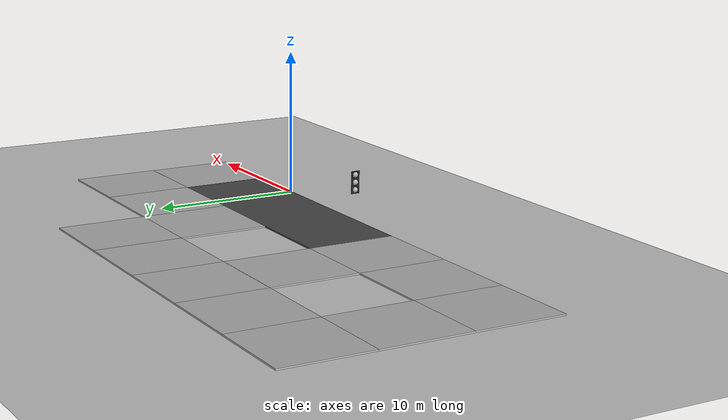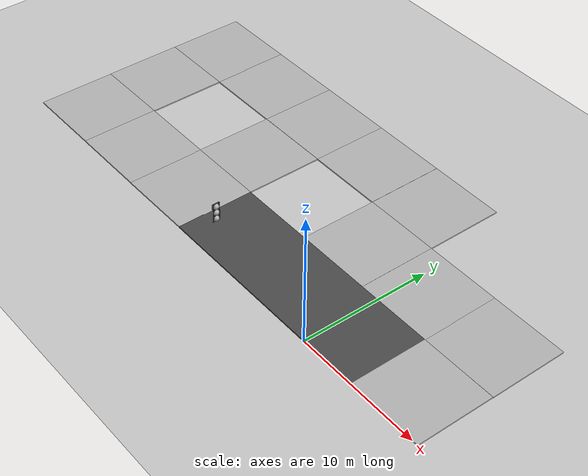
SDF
<sdf version="1.5">
 <world name="default">
  <model name="light_model_clone">
   <static>1</static>
   <pose>-10.344 0.895 3.017 0 0 1.579</pose>
   <link name="color">
    <light name="red" type="point">
     <pose>0 0 0.5 0 -0 0</pose>
     <attenuation><range>0.2</range><linear>0.1</linear></attenuation>
     <diffuse>1 0.2 0.2 1</diffuse>
     <specular>1 1 1 1</specular>
     <direction>0 0 -1</direction>
     <spot><inner_angle>0</inner_angle><outer_angle>0</outer_angle><falloff>0</falloff></spot>
    </light>
    <visual name="red">
     <pose>0 0 0.5 0 -0 0</pose>
     <geometry><sphere><radius>0.2</radius></sphere></geometry>
    </visual>
    <light name="yellow" type="point">
     <attenuation><range>0.2</range><linear>0.1</linear></attenuation>
     <diffuse>1 0.2 0.2 1</diffuse>
     <specular>1 1 1 1</specular>
     <direction>0 0 -1</direction>
     <spot><inner_angle>0</inner_angle><outer_angle>0</outer_angle><falloff>0</falloff></spot>
    </light>
    <visual name="yellow"><geometry><sphere><radius>0.2</radius></sphere></geometry></visual>
    <light name="green" type="point">
     <pose>0 0 -0.5 0 -0 0</pose>
     <attenuation><range>0.2</range><linear>0.1</linear></attenuation>
     <diffuse>1 0.2 0.2 1</diffuse>
     <specular>1 1 1 1</specular>
     <direction>0 0 -1</direction>
     <spot><inner_angle>0</inner_angle><outer_angle>0</outer_angle><falloff>0</falloff></spot>
    </light>
    <visual name="green">
     <pose>0 0 -0.5 0 -0 0</pose>
     <geometry><sphere><radius>0.2</radius></sphere></geometry>
    </visual>
    <visual name="back">
     <pose>0 0.025 0 0 -0 0</pose>
     <geometry><box><size>0.6 0.05 1.5</size></box></geometry>
     <material>
      <ambient>0.1 0.1 0.1 1</ambient>
      <diffuse>0.1 0.1 0.1 1</diffuse>
      <specular>0.1 0.1 0.1 1</specular>
      <emissive>0.1 0.1 0.1 1</emissive>
     </material>
    </visual>
   </link>
   <plugin name="light_control" filename="libLedPlugin.so">
    <enable>1</enable>
    <light>
     <id>color/red</id>
     <block><duration>10</duration><interval>0</interval><color>1 0 0</color></block>
     <block><duration>3</duration><interval>0</interval><color>0.01 0 0</color></block>
     <block><duration>15</duration><interval>0</interval><color>0.01 0 0</color></block>
     <enable>1</enable>
    </light>
    <light>
     <id>color/yellow</id>
     <block><duration>10</duration><interval>0</interval><color>0.01 0.01 0</color></block>
     <block><duration>3</duration><interval>0</interval><color>1 1 0</color></block>
     <block><duration>15</duration><interval>0</interval><color>0.01 0.01 0</color></block>
     <enable>1</enable>
    </light>
    <light>
     <id>color/green</id>
     <block><duration>10</duration><interval>0</interval><color>0 0.01 0</color></block>
     <block><duration>3</duration><interval>0</interval><color>0 0.01 0</color></block>
     <block><duration>15</duration><interval>0</interval><color>0 1 0</color></block>
     <enable>1</enable>
    </light>
   </plugin>
  </model>
  <scene>
   <sky><clouds><speed>12</speed></clouds></sky>
   <ambient>0.4 0.4 0.4 1</ambient>
   <background>0.7 0.7 0.7 1</background>
   <shadows>1</shadows>
  </scene>
  <light name="sun" type="directional">
   <cast_shadows>0</cast_shadows>
   <pose>0 0 10 0 -0 0</pose>
   <diffuse>0.8 0.8 0.8 1</diffuse>
   <specular>0.2 0.2 0.2 1</specular>
   <attenuation>
    <range>1000</range>
    <constant>0.9</constant>
    <linear>0.01</linear>
    <quadratic>0.001</quadratic>
   </attenuation>
   <direction>-0.5 0.1 -0.9</direction>
  </light>
  <model name="ground_plane">
   <static>1</static>
   <link name="link">
    <collision name="collision">
     <geometry><plane><normal>0 0 1</normal><size>100 100</size></plane></geometry>
     <surface><friction><ode><mu>100</mu><mu2>50</mu2></ode></friction></surface>
    </collision>
    <visual name="visual">
     <cast_shadows>0</cast_shadows>
     <geometry><plane><normal>0 0 1</normal><size>100 100</size></plane></geometry>
     <material>
      <script><uri>file://media/materials/scripts/gazebo.material</uri><name>Gazebo/Grey</name></script>
     </material>
    </visual>
   </link>
  </model>
  <physics name="ode_70iters" type="ode">
   <real_time_update_rate>1000</real_time_update_rate>
   <ode><solver><type>quick</type><iters>70</iters></solver></ode>
  </physics>
  <scene><ambient>0.4 0.4 0.4 1</ambient><background>0.7 0.7 0.7 1</background><shadows>1</shadows></scene>
  <spherical_coordinates>
   <surface_model>EARTH_WGS84</surface_model>
   <latitude_deg>0</latitude_deg>
   <longitude_deg>0</longitude_deg>
   <elevation>0</elevation>
   <heading_deg>0</heading_deg>
  </spherical_coordinates>
  <model name="road_plane_3">
   <static>1</static>
   <link name="link">
    <collision name="collision"><geometry><box><size>18 6 0.1</size></box></geometry></collision>
    <visual name="visual">
     <cast_shadows>0</cast_shadows>
     <geometry><box><size>18 6 0.1</size></box></geometry>
     <material>
      <script>
       <uri>model://road_plane_3/materials/scripts</uri>
       <uri>model://road_plane_3/materials/textures</uri>
       <name>vrc/road3</name>
      </script>
     </material>
    </visual>
   </link>
   <pose>-4.53361 3 0 0 -0 0</pose>
  </model>
  <model name="road_inter">
   <static>1</static>
   <link name="link">
    <collision name="collision"><geometry><box><size>6 6 0.1</size></box></geometry></collision>
    <visual name="visual">
     <cast_shadows>0</cast_shadows>
     <geometry><box><size>6 6 0.1</size></box></geometry>
     <material>
      <script>
       <uri>model://road_inter/materials/scripts</uri>
       <uri>model://road_inter/materials/textures</uri>
       <name>vrc/inter</name>
      </script>
     </material>
    </visual>
   </link>
   <pose>-16.4785 3 0 0 -0 1.57449</pose>
  </model>
  <model name="road_plane">
   <static>1</static>
   <link name="link">
    <collision name="collision"><geometry><box><size>6 6 0.1</size></box></geometry></collision>
    <visual name="visual">
     <cast_shadows>0</cast_shadows>
     <geometry><box><size>6 6 0.1</size></box></geometry>
     <material>
      <script>
       <uri>model://road_plane/materials/scripts</uri>
       <uri>model://road_plane/materials/textures</uri>
       <name>vrc/plane</name>
      </script>
     </material>
    </visual>
   </link>
   <pose>-22.4501 3 0 0 -0 0</pose>
  </model>
  <model name="road_plane_0">
   <static>1</static>
   <link name="link">
    <collision name="collision"><geometry><box><size>6 6 0.1</size></box></geometry></collision>
    <visual name="visual">
     <cast_shadows>0</cast_shadows>
     <geometry><box><size>6 6 0.1</size></box></geometry>
     <material>
      <script>
       <uri>model://road_plane/materials/scripts</uri>
       <uri>model://road_plane/materials/textures</uri>
       <name>vrc/plane</name>
      </script>
     </material>
    </visual>
   </link>
   <pose>-16.4942 8.98969 0 0 0 -1.57067</pose>
  </model>
  <model name="road_inter_0">
   <static>1</static>
   <link name="link">
    <collision name="collision"><geometry><box><size>6 6 0.1</size></box></geometry></collision>
    <visual name="visual">
     <cast_shadows>0</cast_shadows>
     <geometry><box><size>6 6 0.1</size></box></geometry>
     <material>
      <script>
       <uri>model://road_inter/materials/scripts</uri>
       <uri>model://road_inter/materials/textures</uri>
       <name>vrc/inter</name>
      </script>
     </material>
    </visual>
   </link>
   <pose>-16.4966 15 0 0 0 -1.57121</pose>
  </model>
  <model name="road_plane_1">
   <static>1</static>
   <link name="link">
    <collision name="collision"><geometry><box><size>6 6 0.1</size></box></geometry></collision>
    <visual name="visual">
     <cast_shadows>0</cast_shadows>
     <geometry><box><size>6 6 0.1</size></box></geometry>
     <material>
      <script>
       <uri>model://road_plane/materials/scripts</uri>
       <uri>model://road_plane/materials/textures</uri>
       <name>vrc/plane</name>
      </script>
     </material>
    </visual>
   </link>
   <pose>-22.4897 14.999 0 0 -0 0</pose>
  </model>
  <model name="road_plane_2">
   <static>1</static>
   <link name="link">
    <collision name="collision"><geometry><box><size>6 6 0.1</size></box></geometry></collision>
    <visual name="visual">
     <cast_shadows>0</cast_shadows>
     <geometry><box><size>6 6 0.1</size></box></geometry>
     <material>
      <script>
       <uri>model://road_plane/materials/scripts</uri>
       <uri>model://road_plane/materials/textures</uri>
       <name>vrc/plane</name>
      </script>
     </material>
    </visual>
   </link>
   <pose>-10.5068 15 0 0 -0 0</pose>
  </model>
  <model name="road_diag">
   <static>1</static>
   <link name="link">
    <collision name="collision"><geometry><box><size>6 6 0.1</size></box></geometry></collision>
    <visual name="visual">
     <cast_shadows>0</cast_shadows>
     <geometry><box><size>6 6 0.1</size></box></geometry>
     <material>
      <script>
       <uri>model://road_diag/materials/scripts</uri>
       <uri>model://road_diag/materials/textures</uri>
       <name>vrc/diag</name>
      </script>
     </material>
    </visual>
   </link>
   <pose>7.46142 3 0 0 -0 0</pose>
  </model>
  <model name="road_diag_0">
   <static>1</static>
   <link name="link">
    <collision name="collision"><geometry><box><size>6 6 0.1</size></box></geometry></collision>
    <visual name="visual">
     <cast_shadows>0</cast_shadows>
     <geometry><box><size>6 6 0.1</size></box></geometry>
     <material>
      <script>
       <uri>model://road_diag/materials/scripts</uri>
       <uri>model://road_diag/materials/textures</uri>
       <name>vrc/diag</name>
      </script>
     </material>
    </visual>
   </link>
   <pose>7.47392 9 0 0 -0 1.57232</pose>
  </model>
  <model name="road_plane_4">
   <static>1</static>
   <link name="link">
    <collision name="collision"><geometry><box><size>6 6 0.1</size></box></geometry></collision>
    <visual name="visual">
     <cast_shadows>0</cast_shadows>
     <geometry><box><size>6 6 0.1</size></box></geometry>
     <material>
      <script>
       <uri>model://road_plane/materials/scripts</uri>
       <uri>model://road_plane/materials/textures</uri>
       <name>vrc/plane</name>
      </script>
     </material>
    </visual>
   </link>
   <pose>1.50532 9 0 0 -0 0</pose>
  </model>
  <model name="road_diag_1">
   <static>1</static>
   <link name="link">
    <collision name="collision"><geometry><box><size>6 6 0.1</size></box></geometry></collision>
    <visual name="visual">
     <cast_shadows>0</cast_shadows>
     <geometry><box><size>6 6 0.1</size></box></geometry>
     <material>
      <script>
       <uri>model://road_diag/materials/scripts</uri>
       <uri>model://road_diag/materials/textures</uri>
       <name>vrc/diag</name>
      </script>
     </material>
    </visual>
   </link>
   <pose>-4.49851 9.0036 0 0 0 -1.57191</pose>
  </model>
  <model name="road_diag_2">
   <static>1</static>
   <link name="link">
    <collision name="collision"><geometry><box><size>6 6 0.1</size></box></geometry></collision>
    <visual name="visual">
     <cast_shadows>0</cast_shadows>
     <geometry><box><size>6 6 0.1</size></box></geometry>
     <material>
      <script>
       <uri>model://road_diag/materials/scripts</uri>
       <uri>model://road_diag/materials/textures</uri>
       <name>vrc/diag</name>
      </script>
     </material>
    </visual>
   </link>
   <pose>-4.49563 14.9977 0 0 -0 1.57081</pose>
  </model>
  <model name="road_diag_3">
   <static>1</static>
   <link name="link">
    <collision name="collision"><geometry><box><size>6 6 0.1</size></box></geometry></collision>
    <visual name="visual">
     <cast_shadows>0</cast_shadows>
     <geometry><box><size>6 6 0.1</size></box></geometry>
     <material>
      <script>
       <uri>model://road_diag/materials/scripts</uri>
       <uri>model://road_diag/materials/textures</uri>
       <name>vrc/diag</name>
      </script>
     </material>
    </visual>
   </link>
   <pose>-28.4361 15 0 0 0 -3.14038</pose>
  </model>
  <model name="road_diag_4">
   <static>1</static>
   <link name="link">
    <collision name="collision"><geometry><box><size>6 6 0.1</size></box></geometry></collision>
    <visual name="visual">
     <cast_shadows>0</cast_shadows>
     <geometry><box><size>6 6 0.1</size></box></geometry>
     <material>
      <script>
       <uri>model://road_diag/materials/scripts</uri>
       <uri>model://road_diag/materials/textures</uri>
       <name>vrc/diag</name>
      </script>
     </material>
    </visual>
   </link>
   <pose>-28.4086 3 0 0 0 -1.56894</pose>
  </model>
  <model name="road_plane_5">
   <static>1</static>
   <link name="link">
    <collision name="collision"><geometry><box><size>6 6 0.1</size></box></geometry></collision>
    <visual name="visual">
     <cast_shadows>0</cast_shadows>
     <geometry><box><size>6 6 0.1</size></box></geometry>
     <material>
      <script>
       <uri>model://road_plane/materials/scripts</uri>
       <uri>model://road_plane/materials/textures</uri>
       <name>vrc/plane</name>
      </script>
     </material>
    </visual>
   </link>
   <pose>-28.4368 9 0 0 0 -1.56904</pose>
  </model>
 </world>
</sdf>
